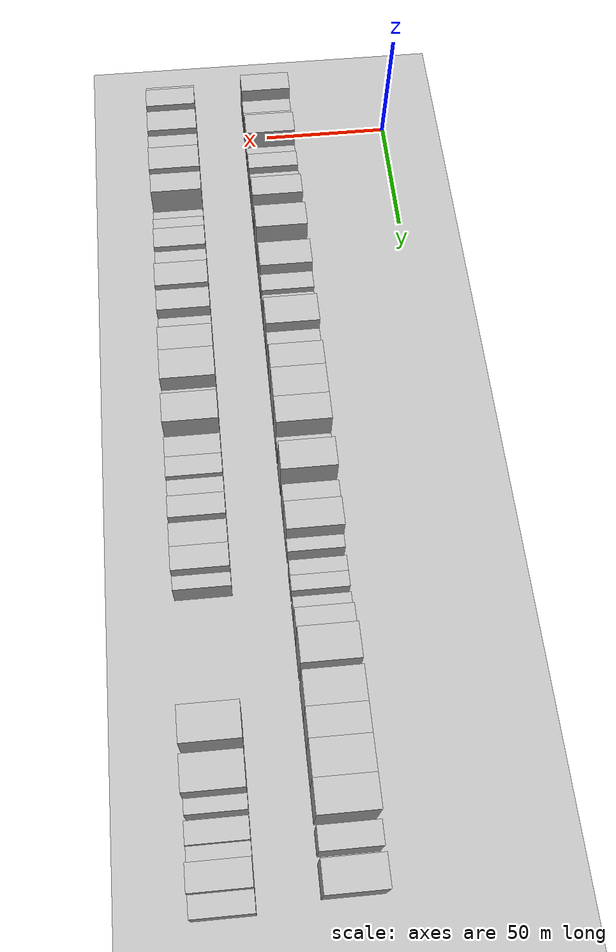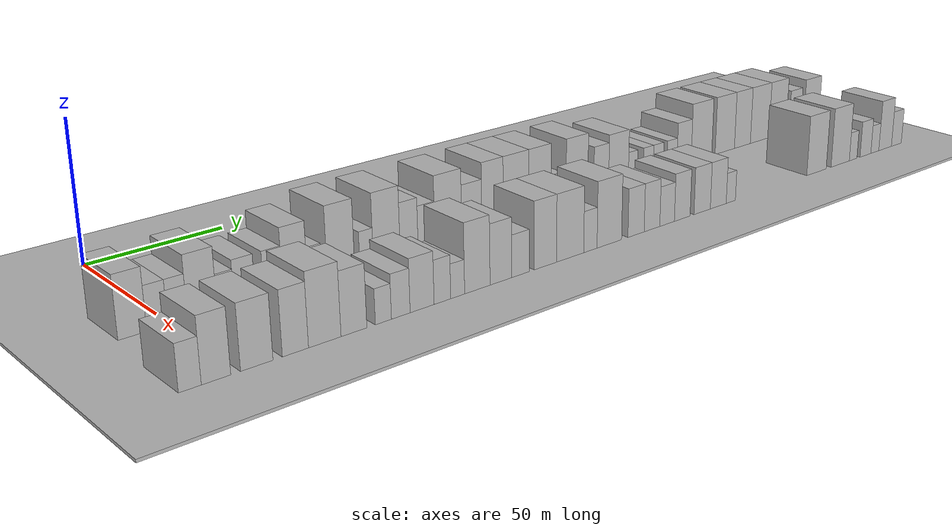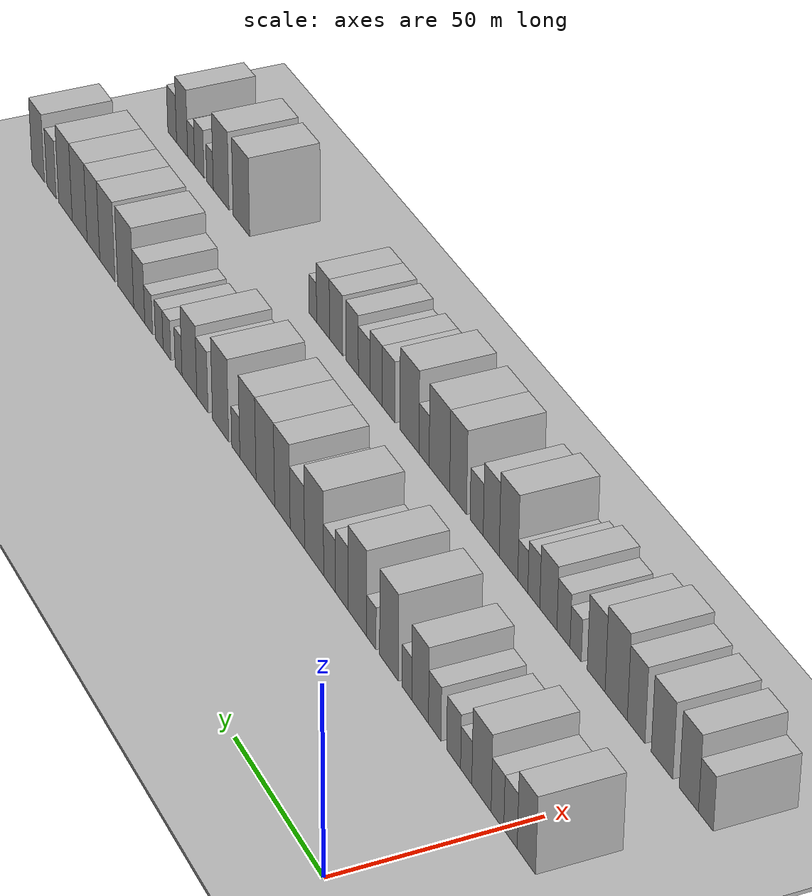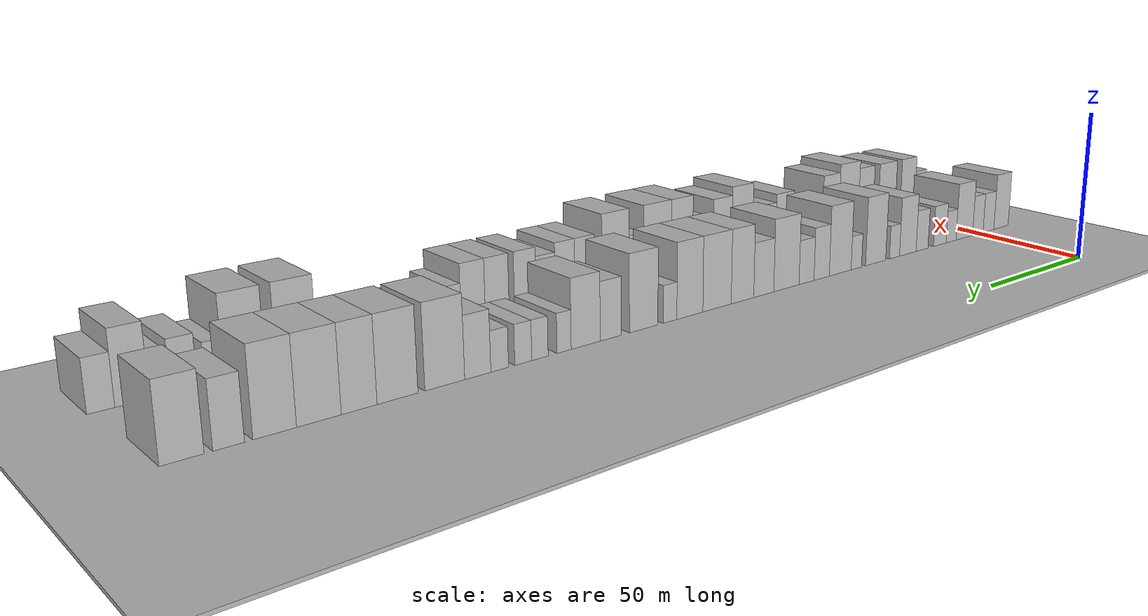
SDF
<sdf version="1.6">
 <world name="default">
  <include><name>ground_plane_1</name><uri>model://HANNAS_ground_plane</uri></include>
  <include>
   <name>ground_plane_2</name>
   <uri>model://HANNAS_ground_plane</uri>
   <pose>100 0 0  0 0 0</pose>
  </include>
  <model name="building_35">
   <static>1</static>
   <pose>50.0000 -12.3017 0 0.000000 0.000000 0.000000</pose>
   <link name="link">
    <pose>0 0 10.50 0 0 0</pose>
    <collision name="collision"><geometry><box><size>20.0000 8.9721 21.0000</size></box></geometry></collision>
    <visual name="visual">
     <cast_shadows>0</cast_shadows>
     <geometry><box><size>20.0000 8.9721 21.0000</size></box></geometry>
     <material>
      <script>
       <uri>model://HANNAS_wall/materials/scripts</uri>
       <uri>model://HANNAS_wall/materials/textures</uri>
       <name>vrc/HANNAS_wall</name>
      </script>
     </material>
    </visual>
   </link>
  </model>
  <model name="building_36">
   <static>1</static>
   <pose>50.0000 -4.4959 0 0.000000 0.000000 0.000000</pose>
   <link name="link">
    <pose>0 0 7.50 0 0 0</pose>
    <collision name="collision"><geometry><box><size>20.0000 6.6396 15.0000</size></box></geometry></collision>
    <visual name="visual">
     <cast_shadows>0</cast_shadows>
     <geometry><box><size>20.0000 6.6396 15.0000</size></box></geometry>
     <material>
      <script>
       <uri>model://HANNAS_wall/materials/scripts</uri>
       <uri>model://HANNAS_wall/materials/textures</uri>
       <name>vrc/HANNAS_wall</name>
      </script>
     </material>
    </visual>
   </link>
  </model>
  <model name="building_37">
   <static>1</static>
   <pose>50.0000 2.0016 0 0.000000 0.000000 0.000000</pose>
   <link name="link">
    <pose>0 0 7.50 0 0 0</pose>
    <collision name="collision"><geometry><box><size>20.0000 6.3552 15.0000</size></box></geometry></collision>
    <visual name="visual">
     <cast_shadows>0</cast_shadows>
     <geometry><box><size>20.0000 6.3552 15.0000</size></box></geometry>
     <material>
      <script>
       <uri>model://HANNAS_wall/materials/scripts</uri>
       <uri>model://HANNAS_wall/materials/textures</uri>
       <name>vrc/HANNAS_wall</name>
      </script>
     </material>
    </visual>
   </link>
  </model>
  <model name="building_38">
   <static>1</static>
   <pose>50.0000 10.0908 0 0.000000 0.000000 0.000000</pose>
   <link name="link">
    <pose>0 0 10.50 0 0 0</pose>
    <collision name="collision"><geometry><box><size>20.0000 9.8233 21.0000</size></box></geometry></collision>
    <visual name="visual">
     <cast_shadows>0</cast_shadows>
     <geometry><box><size>20.0000 9.8233 21.0000</size></box></geometry>
     <material>
      <script>
       <uri>model://HANNAS_wall/materials/scripts</uri>
       <uri>model://HANNAS_wall/materials/textures</uri>
       <name>vrc/HANNAS_wall</name>
      </script>
     </material>
    </visual>
   </link>
  </model>
  <model name="building_39">
   <static>1</static>
   <pose>50.0000 17.8913 0 0.000000 0.000000 0.000000</pose>
   <link name="link">
    <pose>0 0 6.00 0 0 0</pose>
    <collision name="collision"><geometry><box><size>20.0000 5.7777 12.0000</size></box></geometry></collision>
    <visual name="visual">
     <cast_shadows>0</cast_shadows>
     <geometry><box><size>20.0000 5.7777 12.0000</size></box></geometry>
     <material>
      <script>
       <uri>model://HANNAS_wall/materials/scripts</uri>
       <uri>model://HANNAS_wall/materials/textures</uri>
       <name>vrc/HANNAS_wall</name>
      </script>
     </material>
    </visual>
   </link>
  </model>
  <model name="building_40">
   <static>1</static>
   <pose>50.0000 24.4286 0 0.000000 0.000000 0.000000</pose>
   <link name="link">
    <pose>0 0 7.50 0 0 0</pose>
    <collision name="collision"><geometry><box><size>20.0000 7.2970 15.0000</size></box></geometry></collision>
    <visual name="visual">
     <cast_shadows>0</cast_shadows>
     <geometry><box><size>20.0000 7.2970 15.0000</size></box></geometry>
     <material>
      <script>
       <uri>model://HANNAS_wall/materials/scripts</uri>
       <uri>model://HANNAS_wall/materials/textures</uri>
       <name>vrc/HANNAS_wall</name>
      </script>
     </material>
    </visual>
   </link>
  </model>
  <model name="building_41">
   <static>1</static>
   <pose>50.0000 34.3968 0 0.000000 0.000000 0.000000</pose>
   <link name="link">
    <pose>0 0 7.50 0 0 0</pose>
    <collision name="collision"><geometry><box><size>20.0000 6.6393 15.0000</size></box></geometry></collision>
    <visual name="visual">
     <cast_shadows>0</cast_shadows>
     <geometry><box><size>20.0000 6.6393 15.0000</size></box></geometry>
     <material>
      <script>
       <uri>model://HANNAS_wall/materials/scripts</uri>
       <uri>model://HANNAS_wall/materials/textures</uri>
       <name>vrc/HANNAS_wall</name>
      </script>
     </material>
    </visual>
   </link>
  </model>
  <model name="building_42">
   <static>1</static>
   <pose>50.0000 42.2371 0 0.000000 0.000000 0.000000</pose>
   <link name="link">
    <pose>0 0 10.50 0 0 0</pose>
    <collision name="collision"><geometry><box><size>20.0000 9.0413 21.0000</size></box></geometry></collision>
    <visual name="visual">
     <cast_shadows>0</cast_shadows>
     <geometry><box><size>20.0000 9.0413 21.0000</size></box></geometry>
     <material>
      <script>
       <uri>model://HANNAS_wall/materials/scripts</uri>
       <uri>model://HANNAS_wall/materials/textures</uri>
       <name>vrc/HANNAS_wall</name>
      </script>
     </material>
    </visual>
   </link>
  </model>
  <model name="building_43">
   <static>1</static>
   <pose>50.0000 49.4258 0 0.000000 0.000000 0.000000</pose>
   <link name="link">
    <pose>0 0 6.00 0 0 0</pose>
    <collision name="collision"><geometry><box><size>20.0000 5.3360 12.0000</size></box></geometry></collision>
    <visual name="visual">
     <cast_shadows>0</cast_shadows>
     <geometry><box><size>20.0000 5.3360 12.0000</size></box></geometry>
     <material>
      <script>
       <uri>model://HANNAS_wall/materials/scripts</uri>
       <uri>model://HANNAS_wall/materials/textures</uri>
       <name>vrc/HANNAS_wall</name>
      </script>
     </material>
    </visual>
   </link>
  </model>
  <model name="building_44">
   <static>1</static>
   <pose>50.0000 59.3077 0 0.000000 0.000000 0.000000</pose>
   <link name="link">
    <pose>0 0 12.00 0 0 0</pose>
    <collision name="collision"><geometry><box><size>20.0000 10.4279 24.0000</size></box></geometry></collision>
    <visual name="visual">
     <cast_shadows>0</cast_shadows>
     <geometry><box><size>20.0000 10.4279 24.0000</size></box></geometry>
     <material>
      <script>
       <uri>model://HANNAS_wall/materials/scripts</uri>
       <uri>model://HANNAS_wall/materials/textures</uri>
       <name>vrc/HANNAS_wall</name>
      </script>
     </material>
    </visual>
   </link>
  </model>
  <model name="building_45">
   <static>1</static>
   <pose>50.0000 69.1614 0 0.000000 0.000000 0.000000</pose>
   <link name="link">
    <pose>0 0 6.00 0 0 0</pose>
    <collision name="collision"><geometry><box><size>20.0000 5.2795 12.0000</size></box></geometry></collision>
    <visual name="visual">
     <cast_shadows>0</cast_shadows>
     <geometry><box><size>20.0000 5.2795 12.0000</size></box></geometry>
     <material>
      <script>
       <uri>model://HANNAS_wall/materials/scripts</uri>
       <uri>model://HANNAS_wall/materials/textures</uri>
       <name>vrc/HANNAS_wall</name>
      </script>
     </material>
    </visual>
   </link>
  </model>
  <model name="building_46">
   <static>1</static>
   <pose>50.0000 77.1668 0 0.000000 0.000000 0.000000</pose>
   <link name="link">
    <pose>0 0 12.00 0 0 0</pose>
    <collision name="collision"><geometry><box><size>20.0000 10.7313 24.0000</size></box></geometry></collision>
    <visual name="visual">
     <cast_shadows>0</cast_shadows>
     <geometry><box><size>20.0000 10.7313 24.0000</size></box></geometry>
     <material>
      <script>
       <uri>model://HANNAS_wall/materials/scripts</uri>
       <uri>model://HANNAS_wall/materials/textures</uri>
       <name>vrc/HANNAS_wall</name>
      </script>
     </material>
    </visual>
   </link>
  </model>
  <model name="building_47">
   <static>1</static>
   <pose>50.0000 86.1929 0 0.000000 0.000000 0.000000</pose>
   <link name="link">
    <pose>0 0 9.00 0 0 0</pose>
    <collision name="collision"><geometry><box><size>20.0000 7.3210 18.0000</size></box></geometry></collision>
    <visual name="visual">
     <cast_shadows>0</cast_shadows>
     <geometry><box><size>20.0000 7.3210 18.0000</size></box></geometry>
     <material>
      <script>
       <uri>model://HANNAS_wall/materials/scripts</uri>
       <uri>model://HANNAS_wall/materials/textures</uri>
       <name>vrc/HANNAS_wall</name>
      </script>
     </material>
    </visual>
   </link>
  </model>
  <model name="building_48">
   <static>1</static>
   <pose>50.0000 93.3614 0 0.000000 0.000000 0.000000</pose>
   <link name="link">
    <pose>0 0 7.50 0 0 0</pose>
    <collision name="collision"><geometry><box><size>20.0000 7.0160 15.0000</size></box></geometry></collision>
    <visual name="visual">
     <cast_shadows>0</cast_shadows>
     <geometry><box><size>20.0000 7.0160 15.0000</size></box></geometry>
     <material>
      <script>
       <uri>model://HANNAS_wall/materials/scripts</uri>
       <uri>model://HANNAS_wall/materials/textures</uri>
       <name>vrc/HANNAS_wall</name>
      </script>
     </material>
    </visual>
   </link>
  </model>
  <model name="building_49">
   <static>1</static>
   <pose>50.0000 102.6188 0 0.000000 0.000000 0.000000</pose>
   <link name="link">
    <pose>0 0 12.00 0 0 0</pose>
    <collision name="collision"><geometry><box><size>20.0000 11.4986 24.0000</size></box></geometry></collision>
    <visual name="visual">
     <cast_shadows>0</cast_shadows>
     <geometry><box><size>20.0000 11.4986 24.0000</size></box></geometry>
     <material>
      <script>
       <uri>model://HANNAS_wall/materials/scripts</uri>
       <uri>model://HANNAS_wall/materials/textures</uri>
       <name>vrc/HANNAS_wall</name>
      </script>
     </material>
    </visual>
   </link>
  </model>
  <model name="building_50">
   <static>1</static>
   <pose>50.0000 112.7771 0 0.000000 0.000000 0.000000</pose>
   <link name="link">
    <pose>0 0 9.00 0 0 0</pose>
    <collision name="collision"><geometry><box><size>20.0000 8.8180 18.0000</size></box></geometry></collision>
    <visual name="visual">
     <cast_shadows>0</cast_shadows>
     <geometry><box><size>20.0000 8.8180 18.0000</size></box></geometry>
     <material>
      <script>
       <uri>model://HANNAS_wall/materials/scripts</uri>
       <uri>model://HANNAS_wall/materials/textures</uri>
       <name>vrc/HANNAS_wall</name>
      </script>
     </material>
    </visual>
   </link>
  </model>
  <model name="building_51">
   <static>1</static>
   <pose>50.0000 122.0197 0 0.000000 0.000000 0.000000</pose>
   <link name="link">
    <pose>0 0 12.00 0 0 0</pose>
    <collision name="collision"><geometry><box><size>20.0000 9.6673 24.0000</size></box></geometry></collision>
    <visual name="visual">
     <cast_shadows>0</cast_shadows>
     <geometry><box><size>20.0000 9.6673 24.0000</size></box></geometry>
     <material>
      <script>
       <uri>model://HANNAS_wall/materials/scripts</uri>
       <uri>model://HANNAS_wall/materials/textures</uri>
       <name>vrc/HANNAS_wall</name>
      </script>
     </material>
    </visual>
   </link>
  </model>
  <model name="building_52">
   <static>1</static>
   <pose>50.0000 132.7473 0 0.000000 0.000000 0.000000</pose>
   <link name="link">
    <pose>0 0 12.00 0 0 0</pose>
    <collision name="collision"><geometry><box><size>20.0000 11.7878 24.0000</size></box></geometry></collision>
    <visual name="visual">
     <cast_shadows>0</cast_shadows>
     <geometry><box><size>20.0000 11.7878 24.0000</size></box></geometry>
     <material>
      <script>
       <uri>model://HANNAS_wall/materials/scripts</uri>
       <uri>model://HANNAS_wall/materials/textures</uri>
       <name>vrc/HANNAS_wall</name>
      </script>
     </material>
    </visual>
   </link>
  </model>
  <model name="building_53">
   <static>1</static>
   <pose>50.0000 143.8439 0 0.000000 0.000000 0.000000</pose>
   <link name="link">
    <pose>0 0 12.00 0 0 0</pose>
    <collision name="collision"><geometry><box><size>20.0000 10.4054 24.0000</size></box></geometry></collision>
    <visual name="visual">
     <cast_shadows>0</cast_shadows>
     <geometry><box><size>20.0000 10.4054 24.0000</size></box></geometry>
     <material>
      <script>
       <uri>model://HANNAS_wall/materials/scripts</uri>
       <uri>model://HANNAS_wall/materials/textures</uri>
       <name>vrc/HANNAS_wall</name>
      </script>
     </material>
    </visual>
   </link>
  </model>
  <model name="building_54">
   <static>1</static>
   <pose>50.0000 151.7143 0 0.000000 0.000000 0.000000</pose>
   <link name="link">
    <pose>0 0 6.00 0 0 0</pose>
    <collision name="collision"><geometry><box><size>20.0000 5.3353 12.0000</size></box></geometry></collision>
    <visual name="visual">
     <cast_shadows>0</cast_shadows>
     <geometry><box><size>20.0000 5.3353 12.0000</size></box></geometry>
     <material>
      <script>
       <uri>model://HANNAS_wall/materials/scripts</uri>
       <uri>model://HANNAS_wall/materials/textures</uri>
       <name>vrc/HANNAS_wall</name>
      </script>
     </material>
    </visual>
   </link>
  </model>
  <model name="building_55">
   <static>1</static>
   <pose>50.0000 161.7649 0 0.000000 0.000000 0.000000</pose>
   <link name="link">
    <pose>0 0 12.00 0 0 0</pose>
    <collision name="collision"><geometry><box><size>20.0000 10.7659 24.0000</size></box></geometry></collision>
    <visual name="visual">
     <cast_shadows>0</cast_shadows>
     <geometry><box><size>20.0000 10.7659 24.0000</size></box></geometry>
     <material>
      <script>
       <uri>model://HANNAS_wall/materials/scripts</uri>
       <uri>model://HANNAS_wall/materials/textures</uri>
       <name>vrc/HANNAS_wall</name>
      </script>
     </material>
    </visual>
   </link>
  </model>
  <model name="building_56">
   <static>1</static>
   <pose>50.0000 173.9387 0 0.000000 0.000000 0.000000</pose>
   <link name="link">
    <pose>0 0 9.00 0 0 0</pose>
    <collision name="collision"><geometry><box><size>20.0000 7.5818 18.0000</size></box></geometry></collision>
    <visual name="visual">
     <cast_shadows>0</cast_shadows>
     <geometry><box><size>20.0000 7.5818 18.0000</size></box></geometry>
     <material>
      <script>
       <uri>model://HANNAS_wall/materials/scripts</uri>
       <uri>model://HANNAS_wall/materials/textures</uri>
       <name>vrc/HANNAS_wall</name>
      </script>
     </material>
    </visual>
   </link>
  </model>
  <model name="building_57">
   <static>1</static>
   <pose>50.0000 182.8425 0 0.000000 0.000000 0.000000</pose>
   <link name="link">
    <pose>0 0 10.50 0 0 0</pose>
    <collision name="collision"><geometry><box><size>20.0000 10.2259 21.0000</size></box></geometry></collision>
    <visual name="visual">
     <cast_shadows>0</cast_shadows>
     <geometry><box><size>20.0000 10.2259 21.0000</size></box></geometry>
     <material>
      <script>
       <uri>model://HANNAS_wall/materials/scripts</uri>
       <uri>model://HANNAS_wall/materials/textures</uri>
       <name>vrc/HANNAS_wall</name>
      </script>
     </material>
    </visual>
   </link>
  </model>
  <model name="building_58">
   <static>1</static>
   <pose>50.0000 190.3737 0 0.000000 0.000000 0.000000</pose>
   <link name="link">
    <pose>0 0 6.00 0 0 0</pose>
    <collision name="collision"><geometry><box><size>20.0000 4.8365 12.0000</size></box></geometry></collision>
    <visual name="visual">
     <cast_shadows>0</cast_shadows>
     <geometry><box><size>20.0000 4.8365 12.0000</size></box></geometry>
     <material>
      <script>
       <uri>model://HANNAS_wall/materials/scripts</uri>
       <uri>model://HANNAS_wall/materials/textures</uri>
       <name>vrc/HANNAS_wall</name>
      </script>
     </material>
    </visual>
   </link>
  </model>
  <model name="building_59">
   <static>1</static>
   <pose>50.0000 198.5047 0 0.000000 0.000000 0.000000</pose>
   <link name="link">
    <pose>0 0 6.00 0 0 0</pose>
    <collision name="collision"><geometry><box><size>20.0000 5.4254 12.0000</size></box></geometry></collision>
    <visual name="visual">
     <cast_shadows>0</cast_shadows>
     <geometry><box><size>20.0000 5.4254 12.0000</size></box></geometry>
     <material>
      <script>
       <uri>model://HANNAS_wall/materials/scripts</uri>
       <uri>model://HANNAS_wall/materials/textures</uri>
       <name>vrc/HANNAS_wall</name>
      </script>
     </material>
    </visual>
   </link>
  </model>
  <model name="building_60">
   <static>1</static>
   <pose>50.0000 203.9875 0 0.000000 0.000000 0.000000</pose>
   <link name="link">
    <pose>0 0 6.00 0 0 0</pose>
    <collision name="collision"><geometry><box><size>20.0000 5.5404 12.0000</size></box></geometry></collision>
    <visual name="visual">
     <cast_shadows>0</cast_shadows>
     <geometry><box><size>20.0000 5.5404 12.0000</size></box></geometry>
     <material>
      <script>
       <uri>model://HANNAS_wall/materials/scripts</uri>
       <uri>model://HANNAS_wall/materials/textures</uri>
       <name>vrc/HANNAS_wall</name>
      </script>
     </material>
    </visual>
   </link>
  </model>
  <model name="building_61">
   <static>1</static>
   <pose>50.0000 211.5577 0 0.000000 0.000000 0.000000</pose>
   <link name="link">
    <pose>0 0 6.00 0 0 0</pose>
    <collision name="collision"><geometry><box><size>20.0000 5.5999 12.0000</size></box></geometry></collision>
    <visual name="visual">
     <cast_shadows>0</cast_shadows>
     <geometry><box><size>20.0000 5.5999 12.0000</size></box></geometry>
     <material>
      <script>
       <uri>model://HANNAS_wall/materials/scripts</uri>
       <uri>model://HANNAS_wall/materials/textures</uri>
       <name>vrc/HANNAS_wall</name>
      </script>
     </material>
    </visual>
   </link>
  </model>
  <model name="building_62">
   <static>1</static>
   <pose>50.0000 218.3866 0 0.000000 0.000000 0.000000</pose>
   <link name="link">
    <pose>0 0 9.00 0 0 0</pose>
    <collision name="collision"><geometry><box><size>20.0000 8.0580 18.0000</size></box></geometry></collision>
    <visual name="visual">
     <cast_shadows>0</cast_shadows>
     <geometry><box><size>20.0000 8.0580 18.0000</size></box></geometry>
     <material>
      <script>
       <uri>model://HANNAS_wall/materials/scripts</uri>
       <uri>model://HANNAS_wall/materials/textures</uri>
       <name>vrc/HANNAS_wall</name>
      </script>
     </material>
    </visual>
   </link>
  </model>
  <model name="building_63">
   <static>1</static>
   <pose>50.0000 228.3531 0 0.000000 0.000000 0.000000</pose>
   <link name="link">
    <pose>0 0 12.00 0 0 0</pose>
    <collision name="collision"><geometry><box><size>20.0000 11.8751 24.0000</size></box></geometry></collision>
    <visual name="visual">
     <cast_shadows>0</cast_shadows>
     <geometry><box><size>20.0000 11.8751 24.0000</size></box></geometry>
     <material>
      <script>
       <uri>model://HANNAS_wall/materials/scripts</uri>
       <uri>model://HANNAS_wall/materials/textures</uri>
       <name>vrc/HANNAS_wall</name>
      </script>
     </material>
    </visual>
   </link>
  </model>
  <model name="building_64">
   <static>1</static>
   <pose>50.0000 242.0558 0 0.000000 0.000000 0.000000</pose>
   <link name="link">
    <pose>0 0 12.00 0 0 0</pose>
    <collision name="collision"><geometry><box><size>20.0000 11.5301 24.0000</size></box></geometry></collision>
    <visual name="visual">
     <cast_shadows>0</cast_shadows>
     <geometry><box><size>20.0000 11.5301 24.0000</size></box></geometry>
     <material>
      <script>
       <uri>model://HANNAS_wall/materials/scripts</uri>
       <uri>model://HANNAS_wall/materials/textures</uri>
       <name>vrc/HANNAS_wall</name>
      </script>
     </material>
    </visual>
   </link>
  </model>
  <model name="building_65">
   <static>1</static>
   <pose>50.0000 252.6675 0 0.000000 0.000000 0.000000</pose>
   <link name="link">
    <pose>0 0 12.00 0 0 0</pose>
    <collision name="collision"><geometry><box><size>20.0000 9.6934 24.0000</size></box></geometry></collision>
    <visual name="visual">
     <cast_shadows>0</cast_shadows>
     <geometry><box><size>20.0000 9.6934 24.0000</size></box></geometry>
     <material>
      <script>
       <uri>model://HANNAS_wall/materials/scripts</uri>
       <uri>model://HANNAS_wall/materials/textures</uri>
       <name>vrc/HANNAS_wall</name>
      </script>
     </material>
    </visual>
   </link>
  </model>
  <model name="building_66">
   <static>1</static>
   <pose>50.0000 263.3176 0 0.000000 0.000000 0.000000</pose>
   <link name="link">
    <pose>0 0 12.00 0 0 0</pose>
    <collision name="collision"><geometry><box><size>20.0000 11.6069 24.0000</size></box></geometry></collision>
    <visual name="visual">
     <cast_shadows>0</cast_shadows>
     <geometry><box><size>20.0000 11.6069 24.0000</size></box></geometry>
     <material>
      <script>
       <uri>model://HANNAS_wall/materials/scripts</uri>
       <uri>model://HANNAS_wall/materials/textures</uri>
       <name>vrc/HANNAS_wall</name>
      </script>
     </material>
    </visual>
   </link>
  </model>
  <model name="building_67">
   <static>1</static>
   <pose>50.0000 274.5391 0 0.000000 0.000000 0.000000</pose>
   <link name="link">
    <pose>0 0 12.00 0 0 0</pose>
    <collision name="collision"><geometry><box><size>20.0000 10.8362 24.0000</size></box></geometry></collision>
    <visual name="visual">
     <cast_shadows>0</cast_shadows>
     <geometry><box><size>20.0000 10.8362 24.0000</size></box></geometry>
     <material>
      <script>
       <uri>model://HANNAS_wall/materials/scripts</uri>
       <uri>model://HANNAS_wall/materials/textures</uri>
       <name>vrc/HANNAS_wall</name>
      </script>
     </material>
    </visual>
   </link>
  </model>
  <model name="building_68">
   <static>1</static>
   <pose>50.0000 285.7190 0 0.000000 0.000000 0.000000</pose>
   <link name="link">
    <pose>0 0 9.00 0 0 0</pose>
    <collision name="collision"><geometry><box><size>20.0000 7.5236 18.0000</size></box></geometry></collision>
    <visual name="visual">
     <cast_shadows>0</cast_shadows>
     <geometry><box><size>20.0000 7.5236 18.0000</size></box></geometry>
     <material>
      <script>
       <uri>model://HANNAS_wall/materials/scripts</uri>
       <uri>model://HANNAS_wall/materials/textures</uri>
       <name>vrc/HANNAS_wall</name>
      </script>
     </material>
    </visual>
   </link>
  </model>
  <model name="building_69">
   <static>1</static>
   <pose>50.0000 296.5862 0 0.000000 0.000000 0.000000</pose>
   <link name="link">
    <pose>0 0 10.50 0 0 0</pose>
    <collision name="collision"><geometry><box><size>20.0000 10.2108 21.0000</size></box></geometry></collision>
    <visual name="visual">
     <cast_shadows>0</cast_shadows>
     <geometry><box><size>20.0000 10.2108 21.0000</size></box></geometry>
     <material>
      <script>
       <uri>model://HANNAS_wall/materials/scripts</uri>
       <uri>model://HANNAS_wall/materials/textures</uri>
       <name>vrc/HANNAS_wall</name>
      </script>
     </material>
    </visual>
   </link>
  </model>
  <model name="building_103">
   <static>1</static>
   <pose>90.0000 -15.3488 0 0.000000 0.000000 0.000000</pose>
   <link name="link">
    <pose>0 0 7.50 0 0 0</pose>
    <collision name="collision"><geometry><box><size>20.0000 6.7834 15.0000</size></box></geometry></collision>
    <visual name="visual">
     <cast_shadows>0</cast_shadows>
     <geometry><box><size>20.0000 6.7834 15.0000</size></box></geometry>
     <material>
      <script>
       <uri>model://HANNAS_wall/materials/scripts</uri>
       <uri>model://HANNAS_wall/materials/textures</uri>
       <name>vrc/HANNAS_wall</name>
      </script>
     </material>
    </visual>
   </link>
  </model>
  <model name="building_104">
   <static>1</static>
   <pose>90.0000 -7.5104 0 0.000000 0.000000 0.000000</pose>
   <link name="link">
    <pose>0 0 10.50 0 0 0</pose>
    <collision name="collision"><geometry><box><size>20.0000 8.8935 21.0000</size></box></geometry></collision>
    <visual name="visual">
     <cast_shadows>0</cast_shadows>
     <geometry><box><size>20.0000 8.8935 21.0000</size></box></geometry>
     <material>
      <script>
       <uri>model://HANNAS_wall/materials/scripts</uri>
       <uri>model://HANNAS_wall/materials/textures</uri>
       <name>vrc/HANNAS_wall</name>
      </script>
     </material>
    </visual>
   </link>
  </model>
  <model name="building_105">
   <static>1</static>
   <pose>90.0000 5.0416 0 0.000000 0.000000 0.000000</pose>
   <link name="link">
    <pose>0 0 10.50 0 0 0</pose>
    <collision name="collision"><geometry><box><size>20.0000 10.2106 21.0000</size></box></geometry></collision>
    <visual name="visual">
     <cast_shadows>0</cast_shadows>
     <geometry><box><size>20.0000 10.2106 21.0000</size></box></geometry>
     <material>
      <script>
       <uri>model://HANNAS_wall/materials/scripts</uri>
       <uri>model://HANNAS_wall/materials/textures</uri>
       <name>vrc/HANNAS_wall</name>
      </script>
     </material>
    </visual>
   </link>
  </model>
  <model name="building_106">
   <static>1</static>
   <pose>90.0000 17.4295 0 0.000000 0.000000 0.000000</pose>
   <link name="link">
    <pose>0 0 10.50 0 0 0</pose>
    <collision name="collision"><geometry><box><size>20.0000 8.5651 21.0000</size></box></geometry></collision>
    <visual name="visual">
     <cast_shadows>0</cast_shadows>
     <geometry><box><size>20.0000 8.5651 21.0000</size></box></geometry>
     <material>
      <script>
       <uri>model://HANNAS_wall/materials/scripts</uri>
       <uri>model://HANNAS_wall/materials/textures</uri>
       <name>vrc/HANNAS_wall</name>
      </script>
     </material>
    </visual>
   </link>
  </model>
  <model name="building_107">
   <static>1</static>
   <pose>90.0000 27.1963 0 0.000000 0.000000 0.000000</pose>
   <link name="link">
    <pose>0 0 12.00 0 0 0</pose>
    <collision name="collision"><geometry><box><size>20.0000 10.9686 24.0000</size></box></geometry></collision>
    <visual name="visual">
     <cast_shadows>0</cast_shadows>
     <geometry><box><size>20.0000 10.9686 24.0000</size></box></geometry>
     <material>
      <script>
       <uri>model://HANNAS_wall/materials/scripts</uri>
       <uri>model://HANNAS_wall/materials/textures</uri>
       <name>vrc/HANNAS_wall</name>
      </script>
     </material>
    </visual>
   </link>
  </model>
  <model name="building_108">
   <static>1</static>
   <pose>90.0000 37.1631 0 0.000000 0.000000 0.000000</pose>
   <link name="link">
    <pose>0 0 10.50 0 0 0</pose>
    <collision name="collision"><geometry><box><size>20.0000 8.9649 21.0000</size></box></geometry></collision>
    <visual name="visual">
     <cast_shadows>0</cast_shadows>
     <geometry><box><size>20.0000 8.9649 21.0000</size></box></geometry>
     <material>
      <script>
       <uri>model://HANNAS_wall/materials/scripts</uri>
       <uri>model://HANNAS_wall/materials/textures</uri>
       <name>vrc/HANNAS_wall</name>
      </script>
     </material>
    </visual>
   </link>
  </model>
  <model name="building_109">
   <static>1</static>
   <pose>90.0000 47.5309 0 0.000000 0.000000 0.000000</pose>
   <link name="link">
    <pose>0 0 6.00 0 0 0</pose>
    <collision name="collision"><geometry><box><size>20.0000 5.7707 12.0000</size></box></geometry></collision>
    <visual name="visual">
     <cast_shadows>0</cast_shadows>
     <geometry><box><size>20.0000 5.7707 12.0000</size></box></geometry>
     <material>
      <script>
       <uri>model://HANNAS_wall/materials/scripts</uri>
       <uri>model://HANNAS_wall/materials/textures</uri>
       <name>vrc/HANNAS_wall</name>
      </script>
     </material>
    </visual>
   </link>
  </model>
  <model name="building_110">
   <static>1</static>
   <pose>90.0000 53.8296 0 0.000000 0.000000 0.000000</pose>
   <link name="link">
    <pose>0 0 7.50 0 0 0</pose>
    <collision name="collision"><geometry><box><size>20.0000 6.8266 15.0000</size></box></geometry></collision>
    <visual name="visual">
     <cast_shadows>0</cast_shadows>
     <geometry><box><size>20.0000 6.8266 15.0000</size></box></geometry>
     <material>
      <script>
       <uri>model://HANNAS_wall/materials/scripts</uri>
       <uri>model://HANNAS_wall/materials/textures</uri>
       <name>vrc/HANNAS_wall</name>
      </script>
     </material>
    </visual>
   </link>
  </model>
  <model name="building_111">
   <static>1</static>
   <pose>90.0000 61.7289 0 0.000000 0.000000 0.000000</pose>
   <link name="link">
    <pose>0 0 9.00 0 0 0</pose>
    <collision name="collision"><geometry><box><size>20.0000 8.9719 18.0000</size></box></geometry></collision>
    <visual name="visual">
     <cast_shadows>0</cast_shadows>
     <geometry><box><size>20.0000 8.9719 18.0000</size></box></geometry>
     <material>
      <script>
       <uri>model://HANNAS_wall/materials/scripts</uri>
       <uri>model://HANNAS_wall/materials/textures</uri>
       <name>vrc/HANNAS_wall</name>
      </script>
     </material>
    </visual>
   </link>
  </model>
  <model name="building_112">
   <static>1</static>
   <pose>90.0000 69.3833 0 0.000000 0.000000 0.000000</pose>
   <link name="link">
    <pose>0 0 7.50 0 0 0</pose>
    <collision name="collision"><geometry><box><size>20.0000 6.3369 15.0000</size></box></geometry></collision>
    <visual name="visual">
     <cast_shadows>0</cast_shadows>
     <geometry><box><size>20.0000 6.3369 15.0000</size></box></geometry>
     <material>
      <script>
       <uri>model://HANNAS_wall/materials/scripts</uri>
       <uri>model://HANNAS_wall/materials/textures</uri>
       <name>vrc/HANNAS_wall</name>
      </script>
     </material>
    </visual>
   </link>
  </model>
  <model name="building_113">
   <static>1</static>
   <pose>90.0000 75.2606 0 0.000000 0.000000 0.000000</pose>
   <link name="link">
    <pose>0 0 6.00 0 0 0</pose>
    <collision name="collision"><geometry><box><size>20.0000 5.4178 12.0000</size></box></geometry></collision>
    <visual name="visual">
     <cast_shadows>0</cast_shadows>
     <geometry><box><size>20.0000 5.4178 12.0000</size></box></geometry>
     <material>
      <script>
       <uri>model://HANNAS_wall/materials/scripts</uri>
       <uri>model://HANNAS_wall/materials/textures</uri>
       <name>vrc/HANNAS_wall</name>
      </script>
     </material>
    </visual>
   </link>
  </model>
  <model name="building_114">
   <static>1</static>
   <pose>90.0000 83.0299 0 0.000000 0.000000 0.000000</pose>
   <link name="link">
    <pose>0 0 12.00 0 0 0</pose>
    <collision name="collision"><geometry><box><size>20.0000 10.1208 24.0000</size></box></geometry></collision>
    <visual name="visual">
     <cast_shadows>0</cast_shadows>
     <geometry><box><size>20.0000 10.1208 24.0000</size></box></geometry>
     <material>
      <script>
       <uri>model://HANNAS_wall/materials/scripts</uri>
       <uri>model://HANNAS_wall/materials/textures</uri>
       <name>vrc/HANNAS_wall</name>
      </script>
     </material>
    </visual>
   </link>
  </model>
  <model name="building_115">
   <static>1</static>
   <pose>90.0000 92.5170 0 0.000000 0.000000 0.000000</pose>
   <link name="link">
    <pose>0 0 10.50 0 0 0</pose>
    <collision name="collision"><geometry><box><size>20.0000 8.8534 21.0000</size></box></geometry></collision>
    <visual name="visual">
     <cast_shadows>0</cast_shadows>
     <geometry><box><size>20.0000 8.8534 21.0000</size></box></geometry>
     <material>
      <script>
       <uri>model://HANNAS_wall/materials/scripts</uri>
       <uri>model://HANNAS_wall/materials/textures</uri>
       <name>vrc/HANNAS_wall</name>
      </script>
     </material>
    </visual>
   </link>
  </model>
  <model name="building_116">
   <static>1</static>
   <pose>90.0000 100.6322 0 0.000000 0.000000 0.000000</pose>
   <link name="link">
    <pose>0 0 7.50 0 0 0</pose>
    <collision name="collision"><geometry><box><size>20.0000 7.3769 15.0000</size></box></geometry></collision>
    <visual name="visual">
     <cast_shadows>0</cast_shadows>
     <geometry><box><size>20.0000 7.3769 15.0000</size></box></geometry>
     <material>
      <script>
       <uri>model://HANNAS_wall/materials/scripts</uri>
       <uri>model://HANNAS_wall/materials/textures</uri>
       <name>vrc/HANNAS_wall</name>
      </script>
     </material>
    </visual>
   </link>
  </model>
  <model name="building_117">
   <static>1</static>
   <pose>90.0000 111.1436 0 0.000000 0.000000 0.000000</pose>
   <link name="link">
    <pose>0 0 12.00 0 0 0</pose>
    <collision name="collision"><geometry><box><size>20.0000 9.6459 24.0000</size></box></geometry></collision>
    <visual name="visual">
     <cast_shadows>0</cast_shadows>
     <geometry><box><size>20.0000 9.6459 24.0000</size></box></geometry>
     <material>
      <script>
       <uri>model://HANNAS_wall/materials/scripts</uri>
       <uri>model://HANNAS_wall/materials/textures</uri>
       <name>vrc/HANNAS_wall</name>
      </script>
     </material>
    </visual>
   </link>
  </model>
  <model name="building_118">
   <static>1</static>
   <pose>90.0000 121.9644 0 0.000000 0.000000 0.000000</pose>
   <link name="link">
    <pose>0 0 12.00 0 0 0</pose>
    <collision name="collision"><geometry><box><size>20.0000 11.9956 24.0000</size></box></geometry></collision>
    <visual name="visual">
     <cast_shadows>0</cast_shadows>
     <geometry><box><size>20.0000 11.9956 24.0000</size></box></geometry>
     <material>
      <script>
       <uri>model://HANNAS_wall/materials/scripts</uri>
       <uri>model://HANNAS_wall/materials/textures</uri>
       <name>vrc/HANNAS_wall</name>
      </script>
     </material>
    </visual>
   </link>
  </model>
  <model name="building_119">
   <static>1</static>
   <pose>90.0000 130.9738 0 0.000000 0.000000 0.000000</pose>
   <link name="link">
    <pose>0 0 7.50 0 0 0</pose>
    <collision name="collision"><geometry><box><size>20.0000 6.0231 15.0000</size></box></geometry></collision>
    <visual name="visual">
     <cast_shadows>0</cast_shadows>
     <geometry><box><size>20.0000 6.0231 15.0000</size></box></geometry>
     <material>
      <script>
       <uri>model://HANNAS_wall/materials/scripts</uri>
       <uri>model://HANNAS_wall/materials/textures</uri>
       <name>vrc/HANNAS_wall</name>
      </script>
     </material>
    </visual>
   </link>
  </model>
  <model name="building_120">
   <static>1</static>
   <pose>90.0000 139.6716 0 0.000000 0.000000 0.000000</pose>
   <link name="link">
    <pose>0 0 12.00 0 0 0</pose>
    <collision name="collision"><geometry><box><size>20.0000 11.3726 24.0000</size></box></geometry></collision>
    <visual name="visual">
     <cast_shadows>0</cast_shadows>
     <geometry><box><size>20.0000 11.3726 24.0000</size></box></geometry>
     <material>
      <script>
       <uri>model://HANNAS_wall/materials/scripts</uri>
       <uri>model://HANNAS_wall/materials/textures</uri>
       <name>vrc/HANNAS_wall</name>
      </script>
     </material>
    </visual>
   </link>
  </model>
  <model name="building_121">
   <static>1</static>
   <pose>90.0000 152.2519 0 0.000000 0.000000 0.000000</pose>
   <link name="link">
    <pose>0 0 9.00 0 0 0</pose>
    <collision name="collision"><geometry><box><size>20.0000 7.7880 18.0000</size></box></geometry></collision>
    <visual name="visual">
     <cast_shadows>0</cast_shadows>
     <geometry><box><size>20.0000 7.7880 18.0000</size></box></geometry>
     <material>
      <script>
       <uri>model://HANNAS_wall/materials/scripts</uri>
       <uri>model://HANNAS_wall/materials/textures</uri>
       <name>vrc/HANNAS_wall</name>
      </script>
     </material>
    </visual>
   </link>
  </model>
  <model name="building_122">
   <static>1</static>
   <pose>90.0000 159.9656 0 0.000000 0.000000 0.000000</pose>
   <link name="link">
    <pose>0 0 9.00 0 0 0</pose>
    <collision name="collision"><geometry><box><size>20.0000 7.6393 18.0000</size></box></geometry></collision>
    <visual name="visual">
     <cast_shadows>0</cast_shadows>
     <geometry><box><size>20.0000 7.6393 18.0000</size></box></geometry>
     <material>
      <script>
       <uri>model://HANNAS_wall/materials/scripts</uri>
       <uri>model://HANNAS_wall/materials/textures</uri>
       <name>vrc/HANNAS_wall</name>
      </script>
     </material>
    </visual>
   </link>
  </model>
  <model name="building_123">
   <static>1</static>
   <pose>90.0000 167.4171 0 0.000000 0.000000 0.000000</pose>
   <link name="link">
    <pose>0 0 7.50 0 0 0</pose>
    <collision name="collision"><geometry><box><size>20.0000 7.2636 15.0000</size></box></geometry></collision>
    <visual name="visual">
     <cast_shadows>0</cast_shadows>
     <geometry><box><size>20.0000 7.2636 15.0000</size></box></geometry>
     <material>
      <script>
       <uri>model://HANNAS_wall/materials/scripts</uri>
       <uri>model://HANNAS_wall/materials/textures</uri>
       <name>vrc/HANNAS_wall</name>
      </script>
     </material>
    </visual>
   </link>
  </model>
  <model name="building_124">
   <static>1</static>
   <pose>90.0000 175.0367 0 0.000000 0.000000 0.000000</pose>
   <link name="link">
    <pose>0 0 9.00 0 0 0</pose>
    <collision name="collision"><geometry><box><size>20.0000 7.9757 18.0000</size></box></geometry></collision>
    <visual name="visual">
     <cast_shadows>0</cast_shadows>
     <geometry><box><size>20.0000 7.9757 18.0000</size></box></geometry>
     <material>
      <script>
       <uri>model://HANNAS_wall/materials/scripts</uri>
       <uri>model://HANNAS_wall/materials/textures</uri>
       <name>vrc/HANNAS_wall</name>
      </script>
     </material>
    </visual>
   </link>
  </model>
  <model name="building_125">
   <static>1</static>
   <pose>90.0000 185.2893 0 0.000000 0.000000 0.000000</pose>
   <link name="link">
    <pose>0 0 9.00 0 0 0</pose>
    <collision name="collision"><geometry><box><size>20.0000 8.5296 18.0000</size></box></geometry></collision>
    <visual name="visual">
     <cast_shadows>0</cast_shadows>
     <geometry><box><size>20.0000 8.5296 18.0000</size></box></geometry>
     <material>
      <script>
       <uri>model://HANNAS_wall/materials/scripts</uri>
       <uri>model://HANNAS_wall/materials/textures</uri>
       <name>vrc/HANNAS_wall</name>
      </script>
     </material>
    </visual>
   </link>
  </model>
  <model name="building_126">
   <static>1</static>
   <pose>90.0000 193.7782 0 0.000000 0.000000 0.000000</pose>
   <link name="link">
    <pose>0 0 9.00 0 0 0</pose>
    <collision name="collision"><geometry><box><size>20.0000 8.4482 18.0000</size></box></geometry></collision>
    <visual name="visual">
     <cast_shadows>0</cast_shadows>
     <geometry><box><size>20.0000 8.4482 18.0000</size></box></geometry>
     <material>
      <script>
       <uri>model://HANNAS_wall/materials/scripts</uri>
       <uri>model://HANNAS_wall/materials/textures</uri>
       <name>vrc/HANNAS_wall</name>
      </script>
     </material>
    </visual>
   </link>
  </model>
  <model name="building_127">
   <static>1</static>
   <pose>90.0000 200.4876 0 0.000000 0.000000 0.000000</pose>
   <link name="link">
    <pose>0 0 6.00 0 0 0</pose>
    <collision name="collision"><geometry><box><size>20.0000 4.9707 12.0000</size></box></geometry></collision>
    <visual name="visual">
     <cast_shadows>0</cast_shadows>
     <geometry><box><size>20.0000 4.9707 12.0000</size></box></geometry>
     <material>
      <script>
       <uri>model://HANNAS_wall/materials/scripts</uri>
       <uri>model://HANNAS_wall/materials/textures</uri>
       <name>vrc/HANNAS_wall</name>
      </script>
     </material>
    </visual>
   </link>
  </model>
  <model name="building_128">
   <static>1</static>
   <pose>90.0000 249.6560 0 0.000000 0.000000 0.000000</pose>
   <link name="link">
    <pose>0 0 12.00 0 0 0</pose>
    <collision name="collision"><geometry><box><size>20.0000 11.7887 24.0000</size></box></geometry></collision>
    <visual name="visual">
     <cast_shadows>0</cast_shadows>
     <geometry><box><size>20.0000 11.7887 24.0000</size></box></geometry>
     <material>
      <script>
       <uri>model://HANNAS_wall/materials/scripts</uri>
       <uri>model://HANNAS_wall/materials/textures</uri>
       <name>vrc/HANNAS_wall</name>
      </script>
     </material>
    </visual>
   </link>
  </model>
  <model name="building_129">
   <static>1</static>
   <pose>90.0000 264.2807 0 0.000000 0.000000 0.000000</pose>
   <link name="link">
    <pose>0 0 12.00 0 0 0</pose>
    <collision name="collision"><geometry><box><size>20.0000 11.4606 24.0000</size></box></geometry></collision>
    <visual name="visual">
     <cast_shadows>0</cast_shadows>
     <geometry><box><size>20.0000 11.4606 24.0000</size></box></geometry>
     <material>
      <script>
       <uri>model://HANNAS_wall/materials/scripts</uri>
       <uri>model://HANNAS_wall/materials/textures</uri>
       <name>vrc/HANNAS_wall</name>
      </script>
     </material>
    </visual>
   </link>
  </model>
  <model name="building_130">
   <static>1</static>
   <pose>90.0000 272.4475 0 0.000000 0.000000 0.000000</pose>
   <link name="link">
    <pose>0 0 6.00 0 0 0</pose>
    <collision name="collision"><geometry><box><size>20.0000 4.8731 12.0000</size></box></geometry></collision>
    <visual name="visual">
     <cast_shadows>0</cast_shadows>
     <geometry><box><size>20.0000 4.8731 12.0000</size></box></geometry>
     <material>
      <script>
       <uri>model://HANNAS_wall/materials/scripts</uri>
       <uri>model://HANNAS_wall/materials/textures</uri>
       <name>vrc/HANNAS_wall</name>
      </script>
     </material>
    </visual>
   </link>
  </model>
  <model name="building_131">
   <static>1</static>
   <pose>90.0000 280.3962 0 0.000000 0.000000 0.000000</pose>
   <link name="link">
    <pose>0 0 7.50 0 0 0</pose>
    <collision name="collision"><geometry><box><size>20.0000 7.0243 15.0000</size></box></geometry></collision>
    <visual name="visual">
     <cast_shadows>0</cast_shadows>
     <geometry><box><size>20.0000 7.0243 15.0000</size></box></geometry>
     <material>
      <script>
       <uri>model://HANNAS_wall/materials/scripts</uri>
       <uri>model://HANNAS_wall/materials/textures</uri>
       <name>vrc/HANNAS_wall</name>
      </script>
     </material>
    </visual>
   </link>
  </model>
  <model name="building_132">
   <static>1</static>
   <pose>90.0000 286.5311 0 0.000000 0.000000 0.000000</pose>
   <link name="link">
    <pose>0 0 6.00 0 0 0</pose>
    <collision name="collision"><geometry><box><size>20.0000 5.2455 12.0000</size></box></geometry></collision>
    <visual name="visual">
     <cast_shadows>0</cast_shadows>
     <geometry><box><size>20.0000 5.2455 12.0000</size></box></geometry>
     <material>
      <script>
       <uri>model://HANNAS_wall/materials/scripts</uri>
       <uri>model://HANNAS_wall/materials/textures</uri>
       <name>vrc/HANNAS_wall</name>
      </script>
     </material>
    </visual>
   </link>
  </model>
  <model name="building_133">
   <static>1</static>
   <pose>90.0000 293.3888 0 0.000000 0.000000 0.000000</pose>
   <link name="link">
    <pose>0 0 10.50 0 0 0</pose>
    <collision name="collision"><geometry><box><size>20.0000 8.4698 21.0000</size></box></geometry></collision>
    <visual name="visual">
     <cast_shadows>0</cast_shadows>
     <geometry><box><size>20.0000 8.4698 21.0000</size></box></geometry>
     <material>
      <script>
       <uri>model://HANNAS_wall/materials/scripts</uri>
       <uri>model://HANNAS_wall/materials/textures</uri>
       <name>vrc/HANNAS_wall</name>
      </script>
     </material>
    </visual>
   </link>
  </model>
  <model name="building_134">
   <static>1</static>
   <pose>90.0000 300.9854 0 0.000000 0.000000 0.000000</pose>
   <link name="link">
    <pose>0 0 7.50 0 0 0</pose>
    <collision name="collision"><geometry><box><size>20.0000 6.7233 15.0000</size></box></geometry></collision>
    <visual name="visual">
     <cast_shadows>0</cast_shadows>
     <geometry><box><size>20.0000 6.7233 15.0000</size></box></geometry>
     <material>
      <script>
       <uri>model://HANNAS_wall/materials/scripts</uri>
       <uri>model://HANNAS_wall/materials/textures</uri>
       <name>vrc/HANNAS_wall</name>
      </script>
     </material>
    </visual>
   </link>
  </model>
 </world>
</sdf>
